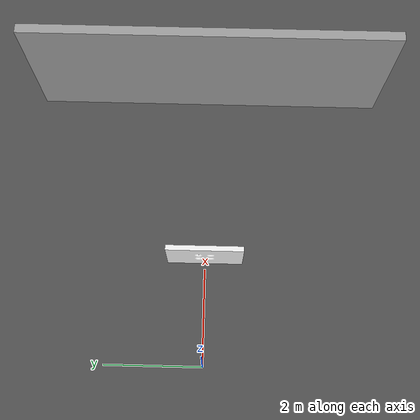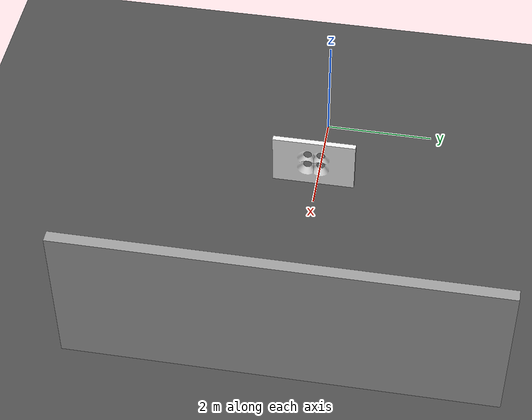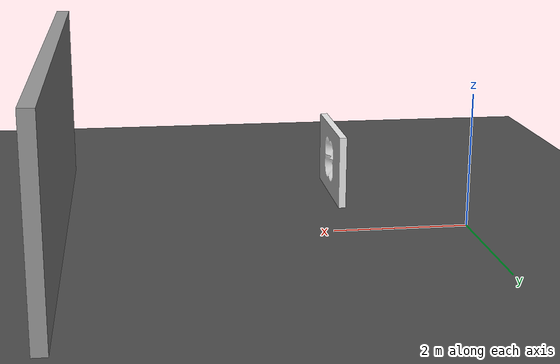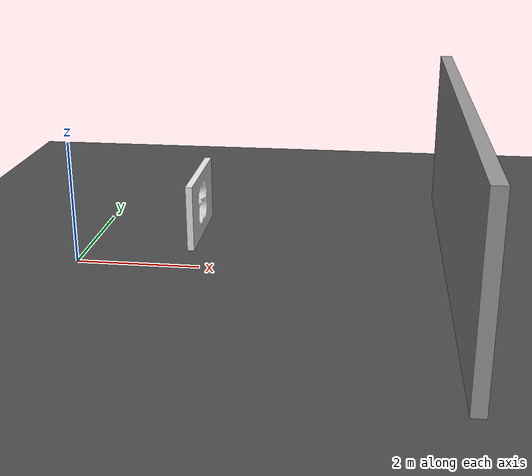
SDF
<sdf version="1.7">
 <world name="default">
  <light name="sun" type="directional">
   <pose>0 0 10 0 -0 0</pose>
   <diffuse>0.8 0.8 0.8 1</diffuse>
   <specular>0.2 0.2 0.2 1</specular>
   <attenuation>
    <range>1000</range>
    <constant>0.9</constant>
    <linear>0.01</linear>
    <quadratic>0.001</quadratic>
   </attenuation>
   <direction>-0.5 0.1 -0.9</direction>
   <spot><inner_angle>0</inner_angle><outer_angle>0</outer_angle><falloff>0</falloff></spot>
  </light>
  <gravity>0 0 -9.8</gravity>
  <magnetic_field>6e-06 2.3e-05 -4.2e-05</magnetic_field>
  <atmosphere type="adiabatic"/>
  <physics type="ode">
   <max_step_size>0.001</max_step_size>
   <real_time_factor>1</real_time_factor>
   <real_time_update_rate>1000</real_time_update_rate>
  </physics>
  <scene><ambient>0.4 0.4 0.4 1</ambient><background>0.7 0.7 0.7 1</background><shadows>1</shadows></scene>
  <spherical_coordinates>
   <surface_model>EARTH_WGS84</surface_model>
   <latitude_deg>0</latitude_deg>
   <longitude_deg>0</longitude_deg>
   <elevation>0</elevation>
   <heading_deg>0</heading_deg>
  </spherical_coordinates>
  <model name="domhof_board">
   <static>1</static>
   <pose>2 0 1.1 -1.5708 -0 -1.5708</pose>
   <link name="link">
    <inertial>
     <pose>-0 -0.048435 -0 0 -0 0</pose>
     <mass>133.58</mass>
     <inertia>
      <ixx>12.468</ixx>
      <ixy>4.0775e-08</ixy>
      <ixz>4.1471e-17</ixz>
      <iyy>40.651</iyy>
      <iyz>-7.67593e-16</iyz>
      <izz>28.406</izz>
     </inertia>
    </inertial>
    <collision name="collision">
     <geometry><mesh><uri>model://domhof_board/meshes/domhof_board.STL</uri></mesh></geometry>
    </collision>
    <visual name="visual">
     <geometry><mesh><uri>model://domhof_board/meshes/domhof_board.STL</uri></mesh></geometry>
     <material>
      <script><uri>file://media/materials/scripts/gazebo.material</uri><name>Gazebo/White</name></script>
     </material>
    </visual>
   </link>
  </model>
  <model name="asphalt_plane">
   <static>1</static>
   <link name="link">
    <collision name="collision"><geometry><box><size>20 20 0.1</size></box></geometry></collision>
    <visual name="visual">
     <cast_shadows>0</cast_shadows>
     <geometry><box><size>20 20 0.1</size></box></geometry>
     <material>
      <script>
       <uri>model://asphalt_plane/materials/scripts</uri>
       <uri>model://asphalt_plane/materials/textures</uri>
       <name>vrc/asphalt</name>
      </script>
     </material>
    </visual>
   </link>
   <pose>0 0 -0.05 0 -0 0</pose>
  </model>
  <model name="grey_wall">
   <static>1</static>
   <link name="link">
    <pose>0 0 1.4 0 -0 0</pose>
    <collision name="collision"><geometry><box><size>7.5 0.2 2.8</size></box></geometry></collision>
    <visual name="visual">
     <cast_shadows>0</cast_shadows>
     <geometry><box><size>7.5 0.2 2.8</size></box></geometry>
     <material>
      <script>
       <uri>model://grey_wall/materials/scripts</uri>
       <uri>model://grey_wall/materials/textures</uri>
       <name>vrc/grey_wall</name>
      </script>
     </material>
    </visual>
   </link>
   <pose>6 0 0 0 -0 1.57</pose>
  </model>
 </world>
</sdf>
